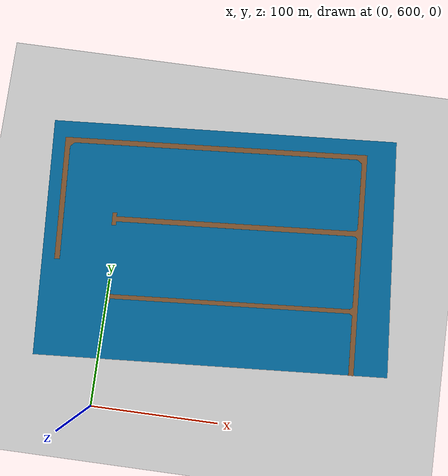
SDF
<sdf version="1.7">
 <world name="marina_base">
  <model name="ground_plane">
   <pose>50 50 -1 0 -0 0</pose>
   <static>1</static>
   <link name="link">
    <collision name="collision">
     <geometry><plane><normal>0 0 1</normal><size>100 100</size></plane></geometry>
     <surface><friction><ode><mu>100</mu><mu2>50</mu2></ode></friction></surface>
    </collision>
    <visual name="visual">
     <cast_shadows>0</cast_shadows>
     <geometry><plane><normal>0 0 1</normal><size>100 100</size></plane></geometry>
     <material>
      <script><uri>file://media/materials/scripts/gazebo.material</uri><name>Gazebo/Grey</name></script>
     </material>
    </visual>
   </link>
  </model>
  <model name="zone_C">
   <static>1</static>
   <pose>97.1637 54.7574 0 0 -0 0.068504</pose>
   <frame name="Marina_Zona_C::__model__" attached_to="Marina_Zona_C::link">
    <pose relative_to="__model__">140.34 587.6 0.08 0 -0 0</pose>
   </frame>
   <link name="Marina_Zona_C::link">
    <inertial>
     <mass>50000</mass>
     <inertia><ixx>0</ixx><ixy>0</ixy><ixz>0</ixz><iyy>0</iyy><iyz>0</iyz><izz>0</izz></inertia>
    </inertial>
    <pose relative_to="Marina_Zona_C::__model__">0 0 0 0 -0 0</pose>
    <visual name="visual">
     <geometry>
      <mesh>
       <uri>/marinero_simulations/models/Marina_Zona_C/meshes/Marina_Zona_C.stl</uri>
       <scale>1 1 1</scale>
      </mesh>
     </geometry>
     <material>
      <script><uri>file://media/materials/scripts/gazebo.material</uri><name>Gazebo/Brown</name></script>
      <ambient>0.278 0.129 0.02 1</ambient>
      <diffuse>0.278 0.129 0.02 1</diffuse>
      <specular>0.278 0.129 0.02 1</specular>
      <emissive>0 0 0 1</emissive>
      <shader type="pixel"><normal_map>__default__</normal_map></shader>
     </material>
    </visual>
    <collision name="collision">
     <geometry>
      <mesh>
       <uri>/marinero_simulations/models/Marina_Zona_C/meshes/Marina_Zona_C.stl</uri>
       <scale>1 1 1</scale>
      </mesh>
     </geometry>
     <surface>
      <friction>
       <ode><mu>1</mu><mu2>1</mu2><fdir1>0 0 0</fdir1><slip1>0.001</slip1><slip2>1e-05</slip2></ode>
       <torsional>
        <coefficient>1</coefficient>
        <patch_radius>0</patch_radius>
        <surface_radius>0</surface_radius>
        <use_patch_radius>1</use_patch_radius>
        <ode><slip>0</slip></ode>
       </torsional>
      </friction>
      <bounce><restitution_coefficient>0</restitution_coefficient><threshold>1000</threshold></bounce>
      <contact>
       <collide_without_contact>0</collide_without_contact>
       <collide_without_contact_bitmask>0</collide_without_contact_bitmask>
       <collide_bitmask>1</collide_bitmask>
       <ode>
        <soft_cfm>0</soft_cfm>
        <soft_erp>0.2</soft_erp>
        <kp>1e+13</kp>
        <kd>10</kd>
        <max_vel>0.01</max_vel>
        <min_depth>0.001</min_depth>
       </ode>
       <bullet>
        <split_impulse>1</split_impulse>
        <split_impulse_penetration_threshold>-0.01</split_impulse_penetration_threshold>
        <soft_cfm>0</soft_cfm>
        <soft_erp>0.2</soft_erp>
        <kp>1e+11</kp>
        <kd>100</kd>
       </bullet>
      </contact>
     </surface>
    </collision>
   </link>
   <static>1</static>
   <frame name="sea_plane_C::__model__" attached_to="sea_plane_C::link">
    <pose relative_to="__model__">31.2865 682.602 0 0 0 -0.0005</pose>
   </frame>
   <link name="sea_plane_C::link">
    <pose relative_to="sea_plane_C::__model__">0 0 0 0 -0 0</pose>
    <inertial>
     <mass>5.27875e+06</mass>
     <inertia>
      <ixx>4.66688e+09</ixx>
      <ixy>0</ixy>
      <ixz>0</ixz>
      <iyy>1.84866e+10</iyy>
      <iyz>0</iyz>
      <izz>2.31535e+10</izz>
     </inertia>
    </inertial>
    <visual name="visual">
     <cast_shadows>0</cast_shadows>
     <geometry><box><size>280 190 0.25</size></box></geometry>
     <material>
      <script>
       <uri>model://sea_plane/materials/scripts</uri>
       <uri>model://sea_plane/materials/textures</uri>
       <name>vrc/sea</name>
      </script>
      <shader type="pixel"><normal_map>__default__</normal_map></shader>
      <ambient>0 0.4 0.6 0</ambient>
      <diffuse>0 0.4 0.6 1</diffuse>
      <specular>0.2 0.2 0.2 1</specular>
      <emissive>0 0 0 1</emissive>
     </material>
    </visual>
    <collision name="collision">
     <geometry><box><size>280 190 0.25</size></box></geometry>
     <surface>
      <friction>
       <ode><mu>1</mu><mu2>1</mu2><fdir1>0 0 0</fdir1><slip1>0</slip1><slip2>0</slip2></ode>
       <torsional>
        <coefficient>1</coefficient>
        <patch_radius>0</patch_radius>
        <surface_radius>0</surface_radius>
        <use_patch_radius>1</use_patch_radius>
        <ode><slip>0</slip></ode>
       </torsional>
      </friction>
      <bounce><restitution_coefficient>0</restitution_coefficient><threshold>1e+06</threshold></bounce>
      <contact>
       <collide_without_contact>0</collide_without_contact>
       <collide_without_contact_bitmask>1</collide_without_contact_bitmask>
       <collide_bitmask>1</collide_bitmask>
       <ode>
        <soft_cfm>0</soft_cfm>
        <soft_erp>0.2</soft_erp>
        <kp>1e+13</kp>
        <kd>1</kd>
        <max_vel>0.01</max_vel>
        <min_depth>0</min_depth>
       </ode>
       <bullet>
        <split_impulse>1</split_impulse>
        <split_impulse_penetration_threshold>-0.01</split_impulse_penetration_threshold>
        <soft_cfm>0</soft_cfm>
        <soft_erp>0.2</soft_erp>
        <kp>1e+13</kp>
        <kd>1</kd>
       </bullet>
      </contact>
     </surface>
    </collision>
   </link>
   <static>1</static>
  </model>
 </world>
</sdf>
